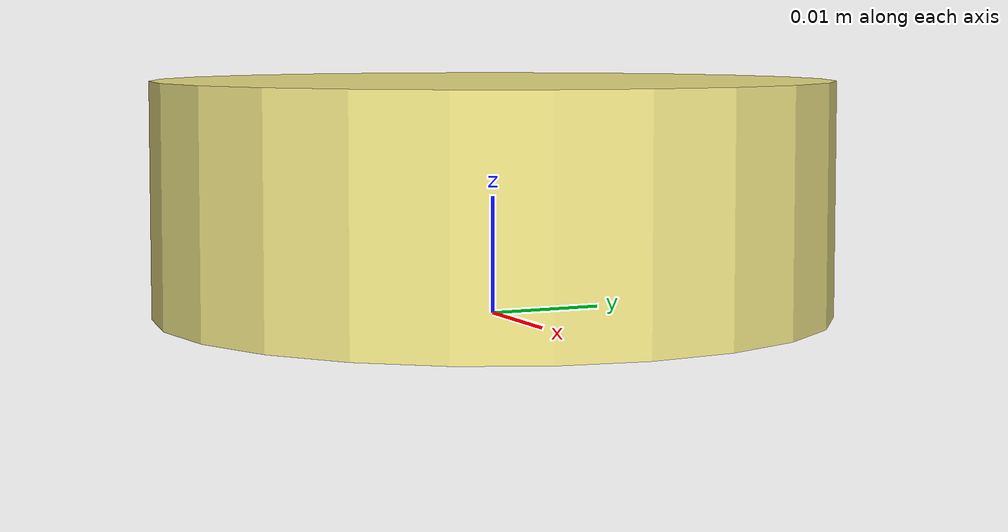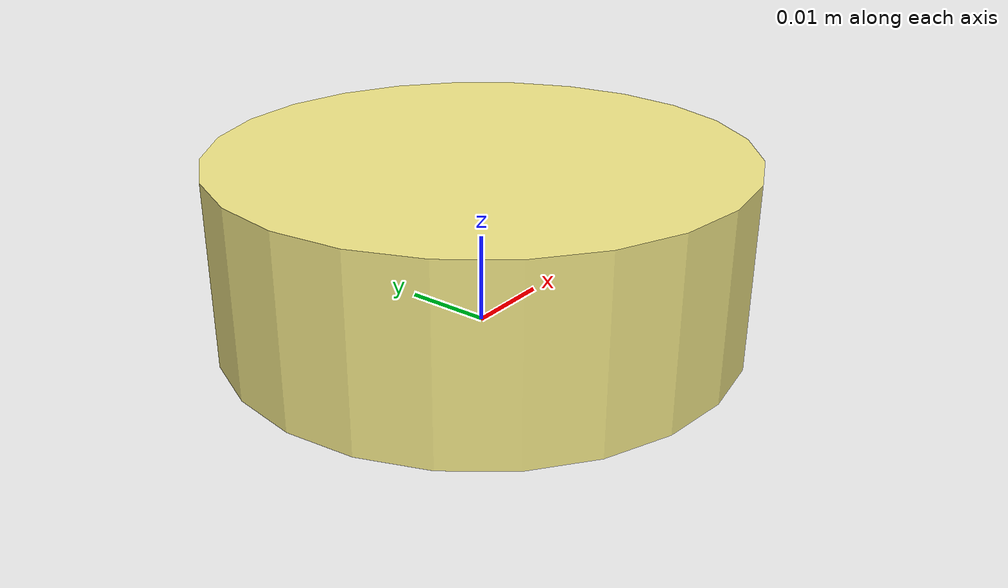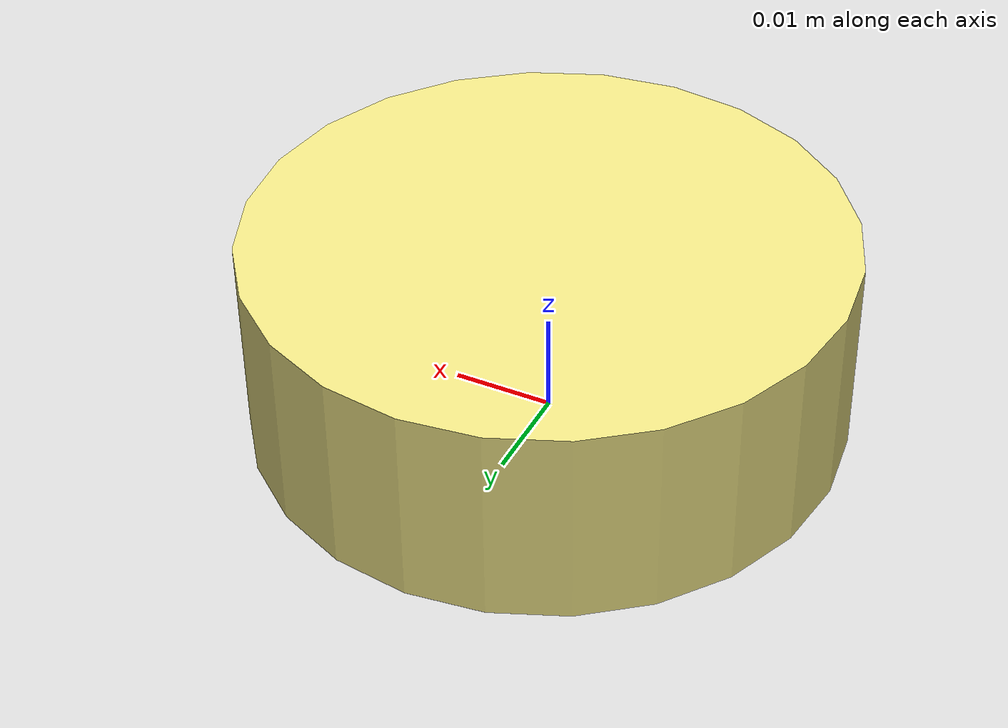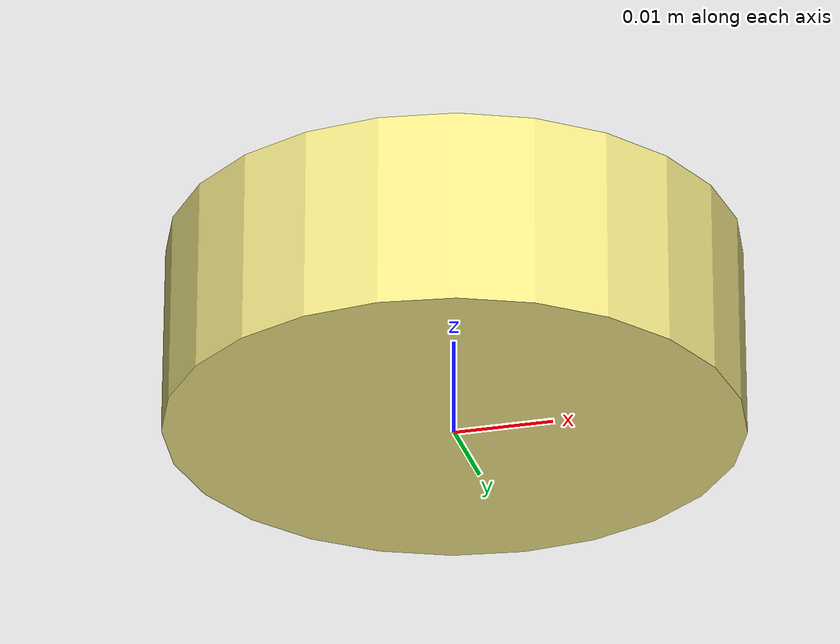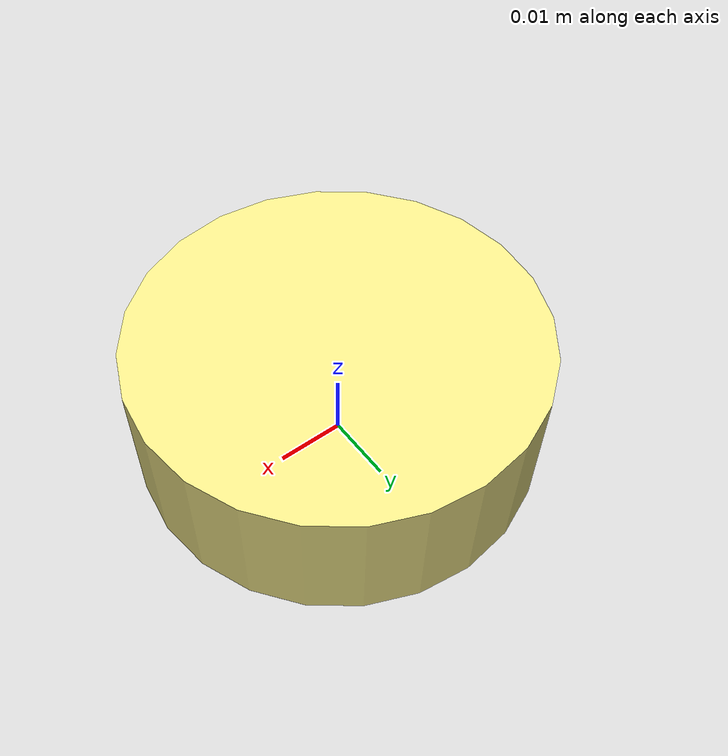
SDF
<sdf version="1.7">
  <model name="disc_29">
    <link name="base_link">
      <inertial>
        <mass>0.05</mass>
        <inertia>
          <ixx>7.91e-06</ixx>
          <ixy>0</ixy>
          <ixz>0</ixz>
          <iyy>7.91e-06</iyy>
          <iyz>0</iyz>
          <izz>1.56e-05</izz>
        </inertia>
        <pose>0 0 0.0025 0 0 0</pose>
      </inertial>
      <pose>0 0 0 0 0 0</pose>
      <visual name="visual">
        <pose>0 0 0.01 0 0 0</pose>
        <geometry>
            <cylinder>
              <radius>0.029</radius>
              <length>0.02</length>
            </cylinder>
        </geometry>
        <material>
          <diffuse>0.9473974642134325 0.9058027975331148 0.5279876653694878 1</diffuse>
        </material>
      </visual>
      <collision name="collision">
        <pose>0 0 0.01 0 0 0</pose>
        <geometry>
            <cylinder>
              <radius>0.029</radius>
              <length>0.02</length>
            </cylinder>
        </geometry>
      </collision>
      <collision name="ball1">
        <pose>0.02050609665440988 0.02050609665440988 0 0 0 0</pose>
        <geometry>
          <sphere>
            <radius>1e-07</radius>
          </sphere>
        </geometry>
      </collision>
      <collision name="ball2">
        <pose>-0.02050609665440988 0.02050609665440988 0 0 0 0</pose>
        <geometry>
          <sphere>
            <radius>1e-07</radius>
          </sphere>
        </geometry>
      </collision>
      <collision name="ball3">
        <pose>0.02050609665440988 -0.02050609665440988 0 0 0 0</pose>
        <geometry>
          <sphere>
            <radius>1e-07</radius>
          </sphere>
        </geometry>
      </collision>
      <collision name="ball4">
        <pose>-0.02050609665440988 -0.02050609665440988 0 0 0 0</pose>
        <geometry>
          <sphere>
            <radius>1e-07</radius>
          </sphere>
        </geometry>
      </collision>
    </link>
  </model>
</sdf>
